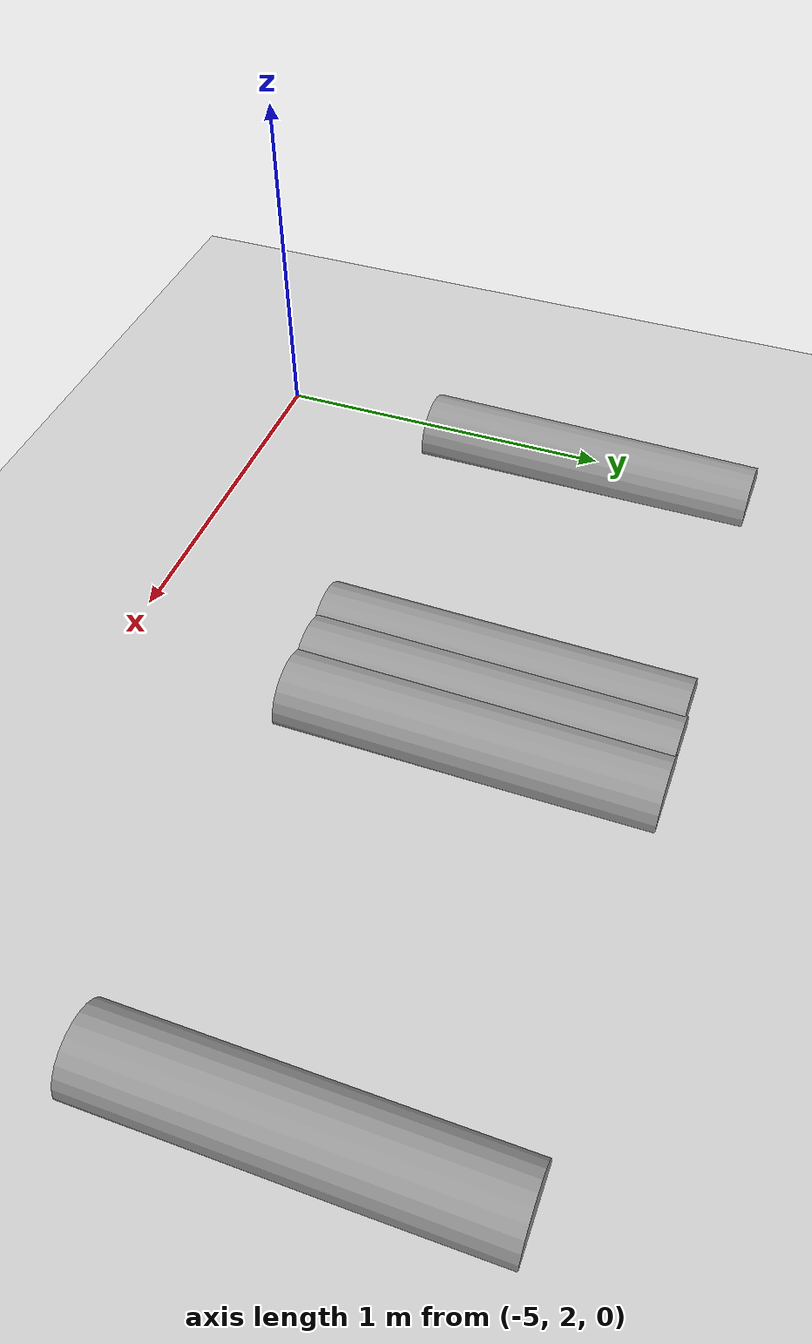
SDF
<sdf version="1.7">
 <world name="default">
  <model name="ground_plane">
   <static>1</static>
   <link name="link">
    <collision name="collision">
     <geometry><plane><normal>0 0 1</normal><size>100 100</size></plane></geometry>
     <surface>
      <contact><collide_bitmask>65535</collide_bitmask></contact>
      <friction><ode><mu>100</mu><mu2>50</mu2></ode></friction>
     </surface>
    </collision>
    <visual name="visual">
     <cast_shadows>0</cast_shadows>
     <geometry><plane><normal>0 0 1</normal><size>100 100</size></plane></geometry>
     <material>
      <script><uri>file://media/materials/scripts/gazebo.material</uri><name>Gazebo/Grey</name></script>
     </material>
    </visual>
   </link>
  </model>
  <model name="unit_cylinder_clone_0">
   <link name="link">
    <inertial>
     <mass>0.0497635</mass>
     <inertia>
      <ixx>0.00430173</ixx>
      <ixy>0</ixy>
      <ixz>0</ixz>
      <iyy>0.00430173</iyy>
      <iyz>0</iyz>
      <izz>0.00030955</izz>
     </inertia>
    </inertial>
    <pose>0.001965 -0.009653 -0.499784 1.55252 -0 0</pose>
    <visual name="visual">
     <geometry><cylinder><radius>0.111539</radius><length>1</length></cylinder></geometry>
     <material>
      <script><name>Gazebo/Grey</name><uri>file://media/materials/scripts/gazebo.material</uri></script>
      <shader type="pixel"/>
     </material>
    </visual>
    <collision name="collision">
     <geometry><cylinder><radius>0.111539</radius><length>1</length></cylinder></geometry>
     <surface>
      <friction>
       <ode><mu>1</mu><mu2>1</mu2><fdir1>0 0 0</fdir1><slip1>0</slip1><slip2>0</slip2></ode>
       <torsional>
        <coefficient>1</coefficient>
        <patch_radius>0</patch_radius>
        <surface_radius>0</surface_radius>
        <use_patch_radius>1</use_patch_radius>
        <ode><slip>0</slip></ode>
       </torsional>
      </friction>
      <bounce><restitution_coefficient>0</restitution_coefficient><threshold>1e+06</threshold></bounce>
      <contact>
       <collide_without_contact>0</collide_without_contact>
       <collide_without_contact_bitmask>1</collide_without_contact_bitmask>
       <collide_bitmask>1</collide_bitmask>
       <ode>
        <soft_cfm>0</soft_cfm>
        <soft_erp>0.2</soft_erp>
        <kp>1e+13</kp>
        <kd>1</kd>
        <max_vel>0.01</max_vel>
        <min_depth>0</min_depth>
       </ode>
       <bullet>
        <split_impulse>1</split_impulse>
        <split_impulse_penetration_threshold>-0.01</split_impulse_penetration_threshold>
        <soft_cfm>0</soft_cfm>
        <soft_erp>0.2</soft_erp>
        <kp>1e+13</kp>
        <kd>1</kd>
       </bullet>
      </contact>
     </surface>
    </collision>
   </link>
   <static>1</static>
   <pose>-2.78058 3.00794 0.5 0 -0 0</pose>
  </model>
  <model name="unit_cylinder_clone_1">
   <link name="link">
    <inertial>
     <mass>0.0497635</mass>
     <inertia>
      <ixx>0.00430173</ixx>
      <ixy>0</ixy>
      <ixz>0</ixz>
      <iyy>0.00430173</iyy>
      <iyz>0</iyz>
      <izz>0.00030955</izz>
     </inertia>
    </inertial>
    <pose>0.001965 -0.009653 -0.499784 1.55252 -0 0</pose>
    <visual name="visual">
     <geometry><cylinder><radius>0.111539</radius><length>1</length></cylinder></geometry>
     <material>
      <script><name>Gazebo/Grey</name><uri>file://media/materials/scripts/gazebo.material</uri></script>
      <shader type="pixel"/>
     </material>
    </visual>
    <collision name="collision">
     <geometry><cylinder><radius>0.111539</radius><length>1</length></cylinder></geometry>
     <surface>
      <friction>
       <ode><mu>1</mu><mu2>1</mu2><fdir1>0 0 0</fdir1><slip1>0</slip1><slip2>0</slip2></ode>
       <torsional>
        <coefficient>1</coefficient>
        <patch_radius>0</patch_radius>
        <surface_radius>0</surface_radius>
        <use_patch_radius>1</use_patch_radius>
        <ode><slip>0</slip></ode>
       </torsional>
      </friction>
      <bounce><restitution_coefficient>0</restitution_coefficient><threshold>1e+06</threshold></bounce>
      <contact>
       <collide_without_contact>0</collide_without_contact>
       <collide_without_contact_bitmask>1</collide_without_contact_bitmask>
       <collide_bitmask>1</collide_bitmask>
       <ode>
        <soft_cfm>0</soft_cfm>
        <soft_erp>0.2</soft_erp>
        <kp>1e+13</kp>
        <kd>1</kd>
        <max_vel>0.01</max_vel>
        <min_depth>0</min_depth>
       </ode>
       <bullet>
        <split_impulse>1</split_impulse>
        <split_impulse_penetration_threshold>-0.01</split_impulse_penetration_threshold>
        <soft_cfm>0</soft_cfm>
        <soft_erp>0.2</soft_erp>
        <kp>1e+13</kp>
        <kd>1</kd>
       </bullet>
      </contact>
     </surface>
    </collision>
   </link>
   <static>1</static>
   <pose>-3.83639 3.01167 0.5 0 -0 0</pose>
  </model>
  <model name="unit_cylinder_clone_2">
   <link name="link">
    <inertial>
     <mass>0.0497635</mass>
     <inertia>
      <ixx>0.00430173</ixx>
      <ixy>0</ixy>
      <ixz>0</ixz>
      <iyy>0.00430173</iyy>
      <iyz>0</iyz>
      <izz>0.00030955</izz>
     </inertia>
    </inertial>
    <pose>0.001965 -0.009653 -0.499784 1.55252 -0 0</pose>
    <visual name="visual">
     <geometry><cylinder><radius>0.111539</radius><length>1</length></cylinder></geometry>
     <material>
      <script><name>Gazebo/Grey</name><uri>file://media/materials/scripts/gazebo.material</uri></script>
      <shader type="pixel"/>
     </material>
    </visual>
    <collision name="collision">
     <geometry><cylinder><radius>0.111539</radius><length>1</length></cylinder></geometry>
     <surface>
      <friction>
       <ode><mu>1</mu><mu2>1</mu2><fdir1>0 0 0</fdir1><slip1>0</slip1><slip2>0</slip2></ode>
       <torsional>
        <coefficient>1</coefficient>
        <patch_radius>0</patch_radius>
        <surface_radius>0</surface_radius>
        <use_patch_radius>1</use_patch_radius>
        <ode><slip>0</slip></ode>
       </torsional>
      </friction>
      <bounce><restitution_coefficient>0</restitution_coefficient><threshold>1e+06</threshold></bounce>
      <contact>
       <collide_without_contact>0</collide_without_contact>
       <collide_without_contact_bitmask>1</collide_without_contact_bitmask>
       <collide_bitmask>1</collide_bitmask>
       <ode>
        <soft_cfm>0</soft_cfm>
        <soft_erp>0.2</soft_erp>
        <kp>1e+13</kp>
        <kd>1</kd>
        <max_vel>0.01</max_vel>
        <min_depth>0</min_depth>
       </ode>
       <bullet>
        <split_impulse>1</split_impulse>
        <split_impulse_penetration_threshold>-0.01</split_impulse_penetration_threshold>
        <soft_cfm>0</soft_cfm>
        <soft_erp>0.2</soft_erp>
        <kp>1e+13</kp>
        <kd>1</kd>
       </bullet>
      </contact>
     </surface>
    </collision>
   </link>
   <static>1</static>
   <pose>-3.96674 3.01014 0.5 0 -0 0</pose>
  </model>
  <model name="unit_cylinder_clone_3">
   <link name="link">
    <inertial>
     <mass>0.0497635</mass>
     <inertia>
      <ixx>0.00430173</ixx>
      <ixy>0</ixy>
      <ixz>0</ixz>
      <iyy>0.00430173</iyy>
      <iyz>0</iyz>
      <izz>0.00030955</izz>
     </inertia>
    </inertial>
    <pose>0.001965 -0.009653 -0.499784 1.55252 -0 0</pose>
    <visual name="visual">
     <geometry><cylinder><radius>0.111539</radius><length>1</length></cylinder></geometry>
     <material>
      <script><name>Gazebo/Grey</name><uri>file://media/materials/scripts/gazebo.material</uri></script>
      <shader type="pixel"/>
     </material>
    </visual>
    <collision name="collision">
     <geometry><cylinder><radius>0.111539</radius><length>1</length></cylinder></geometry>
     <surface>
      <friction>
       <ode><mu>1</mu><mu2>1</mu2><fdir1>0 0 0</fdir1><slip1>0</slip1><slip2>0</slip2></ode>
       <torsional>
        <coefficient>1</coefficient>
        <patch_radius>0</patch_radius>
        <surface_radius>0</surface_radius>
        <use_patch_radius>1</use_patch_radius>
        <ode><slip>0</slip></ode>
       </torsional>
      </friction>
      <bounce><restitution_coefficient>0</restitution_coefficient><threshold>1e+06</threshold></bounce>
      <contact>
       <collide_without_contact>0</collide_without_contact>
       <collide_without_contact_bitmask>1</collide_without_contact_bitmask>
       <collide_bitmask>1</collide_bitmask>
       <ode>
        <soft_cfm>0</soft_cfm>
        <soft_erp>0.2</soft_erp>
        <kp>1e+13</kp>
        <kd>1</kd>
        <max_vel>0.01</max_vel>
        <min_depth>0</min_depth>
       </ode>
       <bullet>
        <split_impulse>1</split_impulse>
        <split_impulse_penetration_threshold>-0.01</split_impulse_penetration_threshold>
        <soft_cfm>0</soft_cfm>
        <soft_erp>0.2</soft_erp>
        <kp>1e+13</kp>
        <kd>1</kd>
       </bullet>
      </contact>
     </surface>
    </collision>
   </link>
   <static>1</static>
   <pose>-4.09698 3.00429 0.5 0 -0 0</pose>
  </model>
  <model name="unit_cylinder_clone_4">
   <link name="link">
    <inertial>
     <mass>0.0497635</mass>
     <inertia>
      <ixx>0.00430173</ixx>
      <ixy>0</ixy>
      <ixz>0</ixz>
      <iyy>0.00430173</iyy>
      <iyz>0</iyz>
      <izz>0.00030955</izz>
     </inertia>
    </inertial>
    <pose>0.001965 -0.009653 -0.499784 1.55252 -0 0</pose>
    <visual name="visual">
     <geometry><cylinder><radius>0.111539</radius><length>1</length></cylinder></geometry>
     <material>
      <script><name>Gazebo/Grey</name><uri>file://media/materials/scripts/gazebo.material</uri></script>
      <shader type="pixel"/>
     </material>
    </visual>
    <collision name="collision">
     <geometry><cylinder><radius>0.111539</radius><length>1</length></cylinder></geometry>
     <surface>
      <friction>
       <ode><mu>1</mu><mu2>1</mu2><fdir1>0 0 0</fdir1><slip1>0</slip1><slip2>0</slip2></ode>
       <torsional>
        <coefficient>1</coefficient>
        <patch_radius>0</patch_radius>
        <surface_radius>0</surface_radius>
        <use_patch_radius>1</use_patch_radius>
        <ode><slip>0</slip></ode>
       </torsional>
      </friction>
      <bounce><restitution_coefficient>0</restitution_coefficient><threshold>1e+06</threshold></bounce>
      <contact>
       <collide_without_contact>0</collide_without_contact>
       <collide_without_contact_bitmask>1</collide_without_contact_bitmask>
       <collide_bitmask>1</collide_bitmask>
       <ode>
        <soft_cfm>0</soft_cfm>
        <soft_erp>0.2</soft_erp>
        <kp>1e+13</kp>
        <kd>1</kd>
        <max_vel>0.01</max_vel>
        <min_depth>0</min_depth>
       </ode>
       <bullet>
        <split_impulse>1</split_impulse>
        <split_impulse_penetration_threshold>-0.01</split_impulse_penetration_threshold>
        <soft_cfm>0</soft_cfm>
        <soft_erp>0.2</soft_erp>
        <kp>1e+13</kp>
        <kd>1</kd>
       </bullet>
      </contact>
     </surface>
    </collision>
   </link>
   <static>1</static>
   <pose>-4.9739 2.99072 0.5 0 -0 0</pose>
  </model>
 </world>
</sdf>
